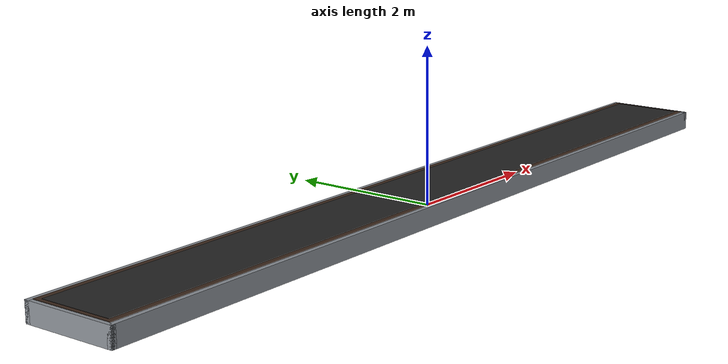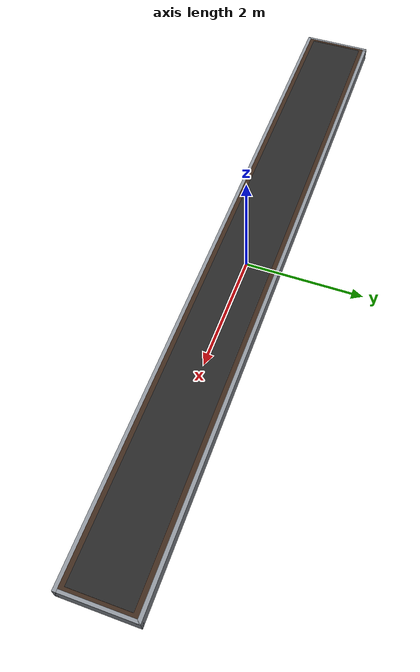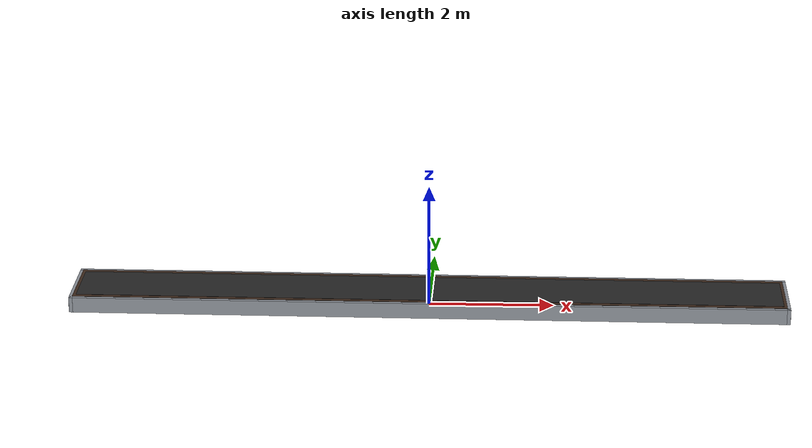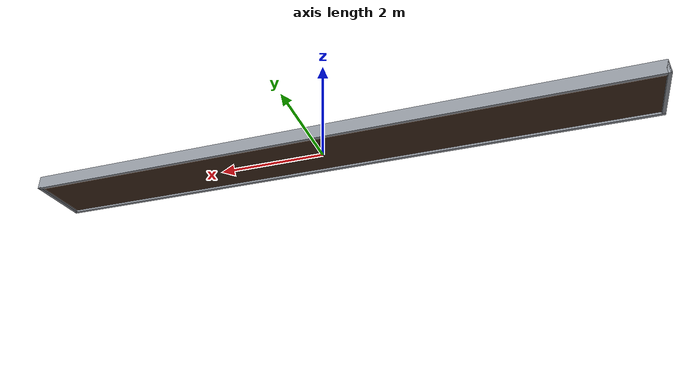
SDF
<?xml version="1.0" ?>
<sdf version="1.9">
  <model name="crop_bed">
    <static>true</static>

    <link name="bed_structure">
      <pose>0 0 0.125 0 0 0</pose>

      <!-- Soil Substrate Surface -->
      <visual name="soil_surface">
        <pose>0 0 0.02 0 0 0</pose>
        <geometry>
          <box>
            <size>11.4 1.1 0.22</size>
          </box>
        </geometry>
        <material>
          <ambient>0.18 0.12 0.08 1</ambient>
          <diffuse>0.24 0.16 0.11 1</diffuse>
          <roughness>0.95</roughness>
        </material>
      </visual>

      <!-- Black Agricultural Mulch Film / Drip Line Strip -->
      <visual name="mulch_cover">
        <pose>0 0 0.131 0 0 0</pose>
        <geometry>
          <box>
            <size>11.3 0.95 0.005</size>
          </box>
        </geometry>
        <material>
          <ambient>0.1 0.1 0.1 1</ambient>
          <diffuse>0.15 0.15 0.15 1</diffuse>
          <roughness>0.4</roughness>
        </material>
      </visual>

      <!-- Bed Retention Borders (Side + End Planks) -->
      <visual name="border_left">
        <pose>0 -0.58 0 0 0 0</pose>
        <geometry><box><size>11.5 0.06 0.25</size></box></geometry>
        <material><ambient>0.45 0.47 0.5 1</ambient><diffuse>0.55 0.57 0.6 1</diffuse><roughness>0.6</roughness></material>
      </visual>
      <visual name="border_right">
        <pose>0 0.58 0 0 0 0</pose>
        <geometry><box><size>11.5 0.06 0.25</size></box></geometry>
        <material><ambient>0.45 0.47 0.5 1</ambient><diffuse>0.55 0.57 0.6 1</diffuse><roughness>0.6</roughness></material>
      </visual>
      <visual name="border_end_front">
        <pose>-5.72 0 0 0 0 0</pose>
        <geometry><box><size>0.06 1.22 0.25</size></box></geometry>
        <material><ambient>0.45 0.47 0.5 1</ambient><diffuse>0.55 0.57 0.6 1</diffuse><roughness>0.6</roughness></material>
      </visual>
      <visual name="border_end_back">
        <pose>5.72 0 0 0 0 0</pose>
        <geometry><box><size>0.06 1.22 0.25</size></box></geometry>
        <material><ambient>0.45 0.47 0.5 1</ambient><diffuse>0.55 0.57 0.6 1</diffuse><roughness>0.6</roughness></material>
      </visual>

      <!-- Collision for drone/robot interactions -->
      <collision name="bed_collision">
        <pose>0 0 0 0 0 0</pose>
        <geometry>
          <box>
            <size>11.5 1.2 0.25</size>
          </box>
        </geometry>
      </collision>
    </link>
  </model>
</sdf>
